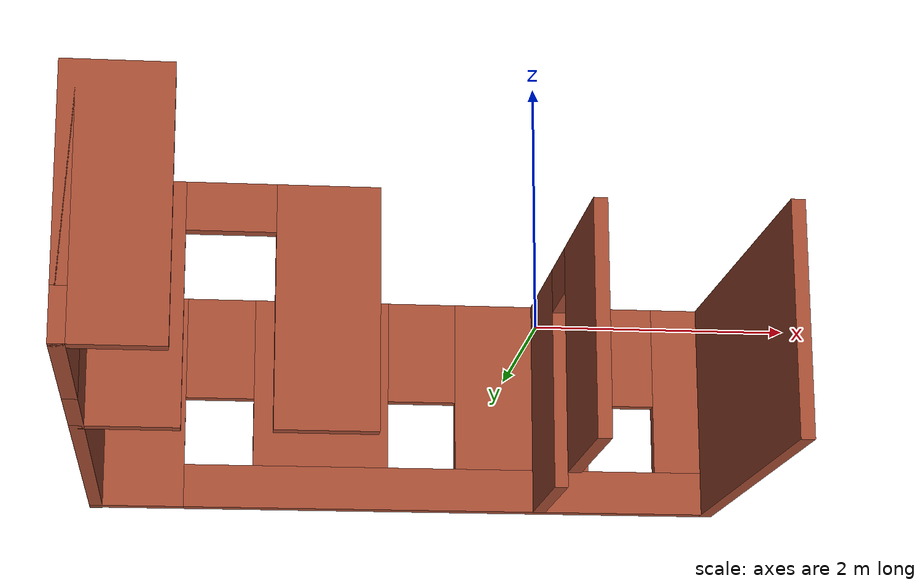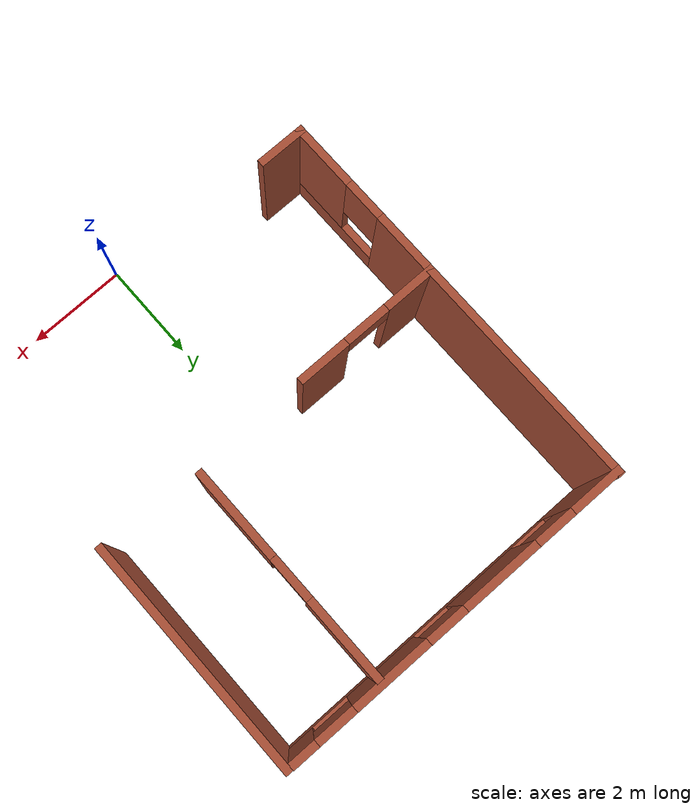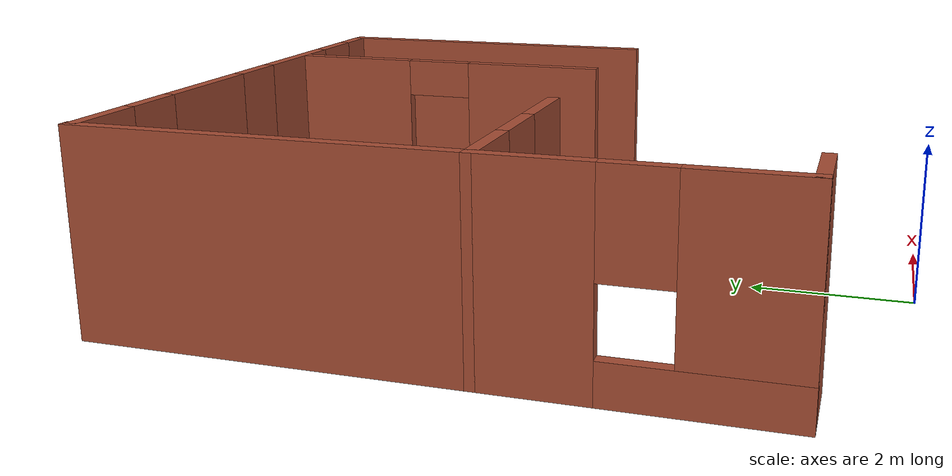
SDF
<?xml version='1.0'?>
<sdf version='1.7'>
  <model name='MyWorld3'>
    <pose>-0.245046 4.51974 0 0 -0 0</pose>
    <link name='Wall_0'>
      <pose>-2.17233 -0.155102 0 0 -0 0.000109</pose>
      <visual name='Wall_0_Visual_0'>
        <pose>-0.971919 0 1.25 0 -0 0</pose>
        <geometry>
          <box>
            <size>1.07872 0.15 2.5</size>
          </box>
        </geometry>
        <material>
          <script>
            <uri>file://media/materials/scripts/gazebo.material</uri>
            <name>Gazebo/Bricks</name>
          </script>
          <ambient>1 1 1 1</ambient>
        </material>
        <meta>
          <layer>0</layer>
        </meta>
      </visual>
      <collision name='Wall_0_Collision_0'>
        <geometry>
          <box>
            <size>1.07872 0.15 2.5</size>
          </box>
        </geometry>
        <pose>-0.971919 0 1.25 0 -0 0</pose>
      </collision>
      <visual name='Wall_0_Visual_1'>
        <pose>0.989359 0 1.25 0 -0 0</pose>
        <geometry>
          <box>
            <size>1.04384 0.15 2.5</size>
          </box>
        </geometry>
        <material>
          <script>
            <uri>file://media/materials/scripts/gazebo.material</uri>
            <name>Gazebo/Bricks</name>
          </script>
          <ambient>1 1 1 1</ambient>
        </material>
        <meta>
          <layer>0</layer>
        </meta>
      </visual>
      <collision name='Wall_0_Collision_1'>
        <geometry>
          <box>
            <size>1.04384 0.15 2.5</size>
          </box>
        </geometry>
        <pose>0.989359 0 1.25 0 -0 0</pose>
      </collision>
      <visual name='Wall_0_Visual_2'>
        <pose>0.01744 0 2.25 0 -0 0</pose>
        <geometry>
          <box>
            <size>0.9 0.15 0.5</size>
          </box>
        </geometry>
        <material>
          <script>
            <uri>file://media/materials/scripts/gazebo.material</uri>
            <name>Gazebo/Bricks</name>
          </script>
          <ambient>1 1 1 1</ambient>
        </material>
        <meta>
          <layer>0</layer>
        </meta>
      </visual>
      <collision name='Wall_0_Collision_2'>
        <geometry>
          <box>
            <size>0.9 0.15 0.5</size>
          </box>
        </geometry>
        <pose>0.01744 0 2.25 0 -0 0</pose>
      </collision>
    </link>
    <link name='Wall_12'>
      <pose>-3.60861 -1.83026 0 0 -0 -1.5708</pose>
      <visual name='Wall_12_Visual_0'>
        <pose>-1.07365 0 1.25 0 -0 0</pose>
        <geometry>
          <box>
            <size>1.3527 0.15 2.5</size>
          </box>
        </geometry>
        <material>
          <script>
            <uri>file://media/materials/scripts/gazebo.material</uri>
            <name>Gazebo/Bricks</name>
          </script>
          <ambient>1 1 1 1</ambient>
        </material>
        <meta>
          <layer>0</layer>
        </meta>
      </visual>
      <collision name='Wall_12_Collision_0'>
        <geometry>
          <box>
            <size>1.3527 0.15 2.5</size>
          </box>
        </geometry>
        <pose>-1.07365 0 1.25 0 -0 0</pose>
      </collision>
      <visual name='Wall_12_Visual_1'>
        <pose>0.676352 0 0.25 0 -0 0</pose>
        <geometry>
          <box>
            <size>2.1473 0.15 0.5</size>
          </box>
        </geometry>
        <material>
          <script>
            <uri>file://media/materials/scripts/gazebo.material</uri>
            <name>Gazebo/Bricks</name>
          </script>
          <ambient>1 1 1 1</ambient>
        </material>
        <meta>
          <layer>0</layer>
        </meta>
      </visual>
      <collision name='Wall_12_Collision_1'>
        <geometry>
          <box>
            <size>2.1473 0.15 0.5</size>
          </box>
        </geometry>
        <pose>0.676352 0 0.25 0 -0 0</pose>
      </collision>
      <visual name='Wall_12_Visual_2'>
        <pose>1.07635 0 1.5 0 -0 0</pose>
        <geometry>
          <box>
            <size>1.3473 0.15 2</size>
          </box>
        </geometry>
        <material>
          <script>
            <uri>file://media/materials/scripts/gazebo.material</uri>
            <name>Gazebo/Bricks</name>
          </script>
          <ambient>1 1 1 1</ambient>
        </material>
        <meta>
          <layer>0</layer>
        </meta>
      </visual>
      <collision name='Wall_12_Collision_2'>
        <geometry>
          <box>
            <size>1.3473 0.15 2</size>
          </box>
        </geometry>
        <pose>1.07635 0 1.5 0 -0 0</pose>
      </collision>
      <visual name='Wall_12_Visual_3'>
        <pose>0.002703 0 1.9 0 -0 0</pose>
        <geometry>
          <box>
            <size>0.8 0.15 1.2</size>
          </box>
        </geometry>
        <material>
          <script>
            <uri>file://media/materials/scripts/gazebo.material</uri>
            <name>Gazebo/Bricks</name>
          </script>
          <ambient>1 1 1 1</ambient>
        </material>
        <meta>
          <layer>0</layer>
        </meta>
      </visual>
      <collision name='Wall_12_Collision_3'>
        <geometry>
          <box>
            <size>0.8 0.15 1.2</size>
          </box>
        </geometry>
        <pose>0.002703 0 1.9 0 -0 0</pose>
      </collision>
    </link>
    <link name='Wall_13'>
      <collision name='Wall_13_Collision'>
        <geometry>
          <box>
            <size>1 0.15 2.5</size>
          </box>
        </geometry>
        <pose>0 0 1.25 0 -0 0</pose>
      </collision>
      <visual name='Wall_13_Visual'>
        <pose>0 0 1.25 0 -0 0</pose>
        <geometry>
          <box>
            <size>1 0.15 2.5</size>
          </box>
        </geometry>
        <material>
          <script>
            <uri>file://media/materials/scripts/gazebo.material</uri>
            <name>Gazebo/Bricks</name>
          </script>
          <ambient>1 1 1 1</ambient>
        </material>
        <meta>
          <layer>0</layer>
        </meta>
      </visual>
      <pose>-3.18361 -3.50526 0 0 -0 0</pose>
    </link>
    <link name='Wall_3'>
      <collision name='Wall_3_Collision'>
        <geometry>
          <box>
            <size>4.75 0.15 2.5</size>
          </box>
        </geometry>
        <pose>0 0 1.25 0 -0 0</pose>
      </collision>
      <visual name='Wall_3_Visual'>
        <pose>0 0 1.25 0 -0 0</pose>
        <geometry>
          <box>
            <size>4.75 0.15 2.5</size>
          </box>
        </geometry>
        <material>
          <script>
            <uri>file://media/materials/scripts/gazebo.material</uri>
            <name>Gazebo/Bricks</name>
          </script>
          <ambient>1 1 1 1</ambient>
        </material>
        <meta>
          <layer>0</layer>
        </meta>
      </visual>
      <pose>-3.60861 2.14474 0 0 -0 1.5708</pose>
    </link>
    <link name='Wall_5'>
      <collision name='Wall_5_Collision'>
        <geometry>
          <box>
            <size>4.75 0.15 2.5</size>
          </box>
        </geometry>
        <pose>0 0 1.25 0 -0 0</pose>
      </collision>
      <visual name='Wall_5_Visual'>
        <pose>0 0 1.25 0 -0 0</pose>
        <geometry>
          <box>
            <size>4.75 0.15 2.5</size>
          </box>
        </geometry>
        <material>
          <script>
            <uri>file://media/materials/scripts/gazebo.material</uri>
            <name>Gazebo/Bricks</name>
          </script>
          <ambient>1 1 1 1</ambient>
        </material>
        <meta>
          <layer>0</layer>
        </meta>
      </visual>
      <pose>3.60861 2.11175 0 0 -0 1.5708</pose>
    </link>
    <link name='Wall_7'>
      <pose>-0.072329 4.42218 0 0 -0 0</pose>
      <visual name='Wall_7_Visual_0'>
        <pose>-3.06948 0 1.25 0 -0 0</pose>
        <geometry>
          <box>
            <size>1.08359 0.15 2.5</size>
          </box>
        </geometry>
        <material>
          <script>
            <uri>file://media/materials/scripts/gazebo.material</uri>
            <name>Gazebo/Bricks</name>
          </script>
          <ambient>1 1 1 1</ambient>
        </material>
        <meta>
          <layer>0</layer>
        </meta>
      </visual>
      <collision name='Wall_7_Collision_0'>
        <geometry>
          <box>
            <size>1.08359 0.15 2.5</size>
          </box>
        </geometry>
        <pose>-3.06948 0 1.25 0 -0 0</pose>
      </collision>
      <visual name='Wall_7_Visual_1'>
        <pose>0.541795 0 0.25 0 -0 0</pose>
        <geometry>
          <box>
            <size>6.13897 0.15 0.5</size>
          </box>
        </geometry>
        <material>
          <script>
            <uri>file://media/materials/scripts/gazebo.material</uri>
            <name>Gazebo/Bricks</name>
          </script>
          <ambient>1 1 1 1</ambient>
        </material>
        <meta>
          <layer>0</layer>
        </meta>
      </visual>
      <collision name='Wall_7_Collision_1'>
        <geometry>
          <box>
            <size>6.13897 0.15 0.5</size>
          </box>
        </geometry>
        <pose>0.541795 0 0.25 0 -0 0</pose>
      </collision>
      <visual name='Wall_7_Visual_2'>
        <pose>-0.932209 0 1.5 0 -0 0</pose>
        <geometry>
          <box>
            <size>1.59096 0.15 2</size>
          </box>
        </geometry>
        <material>
          <script>
            <uri>file://media/materials/scripts/gazebo.material</uri>
            <name>Gazebo/Bricks</name>
          </script>
          <ambient>1 1 1 1</ambient>
        </material>
        <meta>
          <layer>0</layer>
        </meta>
      </visual>
      <collision name='Wall_7_Collision_2'>
        <geometry>
          <box>
            <size>1.59096 0.15 2</size>
          </box>
        </geometry>
        <pose>-0.932209 0 1.5 0 -0 0</pose>
      </collision>
      <visual name='Wall_7_Visual_3'>
        <pose>1.45875 0 1.5 0 -0 0</pose>
        <geometry>
          <box>
            <size>1.59096 0.15 2</size>
          </box>
        </geometry>
        <material>
          <script>
            <uri>file://media/materials/scripts/gazebo.material</uri>
            <name>Gazebo/Bricks</name>
          </script>
          <ambient>1 1 1 1</ambient>
        </material>
        <meta>
          <layer>0</layer>
        </meta>
      </visual>
      <collision name='Wall_7_Collision_3'>
        <geometry>
          <box>
            <size>1.59096 0.15 2</size>
          </box>
        </geometry>
        <pose>1.45875 0 1.5 0 -0 0</pose>
      </collision>
      <visual name='Wall_7_Visual_4'>
        <pose>3.33275 0 1.5 0 -0 0</pose>
        <geometry>
          <box>
            <size>0.557048 0.15 2</size>
          </box>
        </geometry>
        <material>
          <script>
            <uri>file://media/materials/scripts/gazebo.material</uri>
            <name>Gazebo/Bricks</name>
          </script>
          <ambient>1 1 1 1</ambient>
        </material>
        <meta>
          <layer>0</layer>
        </meta>
      </visual>
      <collision name='Wall_7_Collision_4'>
        <geometry>
          <box>
            <size>0.557048 0.15 2</size>
          </box>
        </geometry>
        <pose>3.33275 0 1.5 0 -0 0</pose>
      </collision>
      <visual name='Wall_7_Visual_5'>
        <pose>-2.12769 0 1.9 0 -0 0</pose>
        <geometry>
          <box>
            <size>0.8 0.15 1.2</size>
          </box>
        </geometry>
        <material>
          <script>
            <uri>file://media/materials/scripts/gazebo.material</uri>
            <name>Gazebo/Bricks</name>
          </script>
          <ambient>1 1 1 1</ambient>
        </material>
        <meta>
          <layer>0</layer>
        </meta>
      </visual>
      <collision name='Wall_7_Collision_5'>
        <geometry>
          <box>
            <size>0.8 0.15 1.2</size>
          </box>
        </geometry>
        <pose>-2.12769 0 1.9 0 -0 0</pose>
      </collision>
      <visual name='Wall_7_Visual_6'>
        <pose>0.263271 0 1.9 0 -0 0</pose>
        <geometry>
          <box>
            <size>0.8 0.15 1.2</size>
          </box>
        </geometry>
        <material>
          <script>
            <uri>file://media/materials/scripts/gazebo.material</uri>
            <name>Gazebo/Bricks</name>
          </script>
          <ambient>1 1 1 1</ambient>
        </material>
        <meta>
          <layer>0</layer>
        </meta>
      </visual>
      <collision name='Wall_7_Collision_6'>
        <geometry>
          <box>
            <size>0.8 0.15 1.2</size>
          </box>
        </geometry>
        <pose>0.263271 0 1.9 0 -0 0</pose>
      </collision>
      <visual name='Wall_7_Visual_7'>
        <pose>2.65423 0 1.9 0 -0 0</pose>
        <geometry>
          <box>
            <size>0.8 0.15 1.2</size>
          </box>
        </geometry>
        <material>
          <script>
            <uri>file://media/materials/scripts/gazebo.material</uri>
            <name>Gazebo/Bricks</name>
          </script>
          <ambient>1 1 1 1</ambient>
        </material>
        <meta>
          <layer>0</layer>
        </meta>
      </visual>
      <collision name='Wall_7_Collision_7'>
        <geometry>
          <box>
            <size>0.8 0.15 1.2</size>
          </box>
        </geometry>
        <pose>2.65423 0 1.9 0 -0 0</pose>
      </collision>
    </link>
    <link name='Wall_9'>
      <pose>1.58943 2.12546 0 0 -0 1.5708</pose>
      <visual name='Wall_9_Visual_0'>
        <pose>-1.30969 0 1.25 0 -0 0</pose>
        <geometry>
          <box>
            <size>1.88062 0.15 2.5</size>
          </box>
        </geometry>
        <material>
          <script>
            <uri>file://media/materials/scripts/gazebo.material</uri>
            <name>Gazebo/Bricks</name>
          </script>
          <ambient>1 1 1 1</ambient>
        </material>
        <meta>
          <layer>0</layer>
        </meta>
      </visual>
      <collision name='Wall_9_Collision_0'>
        <geometry>
          <box>
            <size>1.88062 0.15 2.5</size>
          </box>
        </geometry>
        <pose>-1.30969 0 1.25 0 -0 0</pose>
      </collision>
      <visual name='Wall_9_Visual_1'>
        <pose>1.39031 0 1.25 0 -0 0</pose>
        <geometry>
          <box>
            <size>1.71938 0.15 2.5</size>
          </box>
        </geometry>
        <material>
          <script>
            <uri>file://media/materials/scripts/gazebo.material</uri>
            <name>Gazebo/Bricks</name>
          </script>
          <ambient>1 1 1 1</ambient>
        </material>
        <meta>
          <layer>0</layer>
        </meta>
      </visual>
      <collision name='Wall_9_Collision_1'>
        <geometry>
          <box>
            <size>1.71938 0.15 2.5</size>
          </box>
        </geometry>
        <pose>1.39031 0 1.25 0 -0 0</pose>
      </collision>
      <visual name='Wall_9_Visual_2'>
        <pose>0.080623 0 2.25 0 -0 0</pose>
        <geometry>
          <box>
            <size>0.9 0.15 0.5</size>
          </box>
        </geometry>
        <material>
          <script>
            <uri>file://media/materials/scripts/gazebo.material</uri>
            <name>Gazebo/Bricks</name>
          </script>
          <ambient>1 1 1 1</ambient>
        </material>
        <meta>
          <layer>0</layer>
        </meta>
      </visual>
      <collision name='Wall_9_Collision_2'>
        <geometry>
          <box>
            <size>0.9 0.15 0.5</size>
          </box>
        </geometry>
        <pose>0.080623 0 2.25 0 -0 0</pose>
      </collision>
    </link>
    <static>1</static>
  </model>
</sdf>
